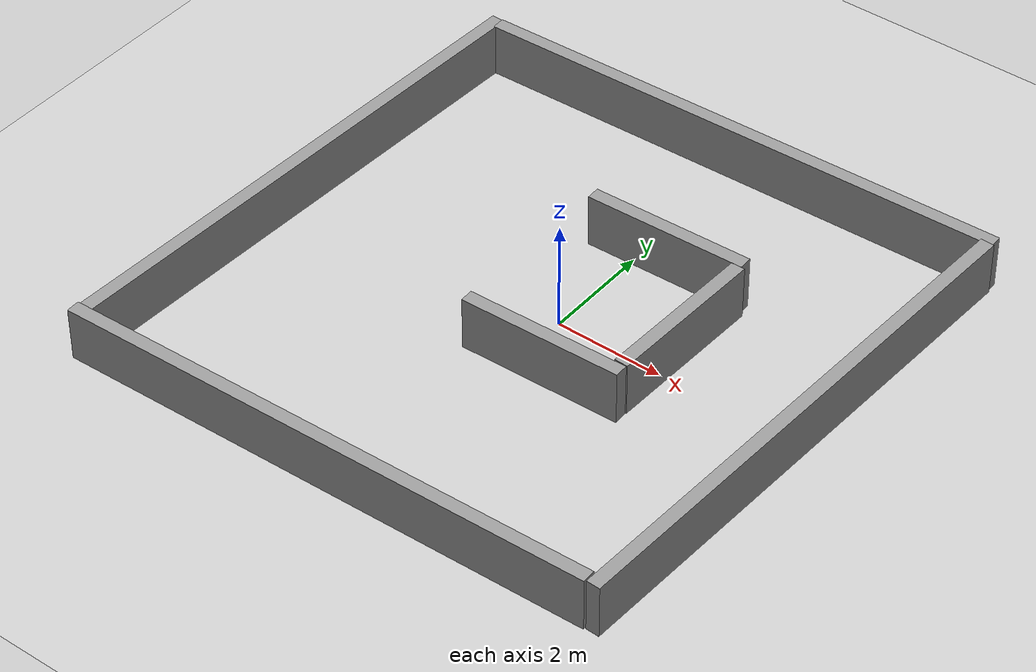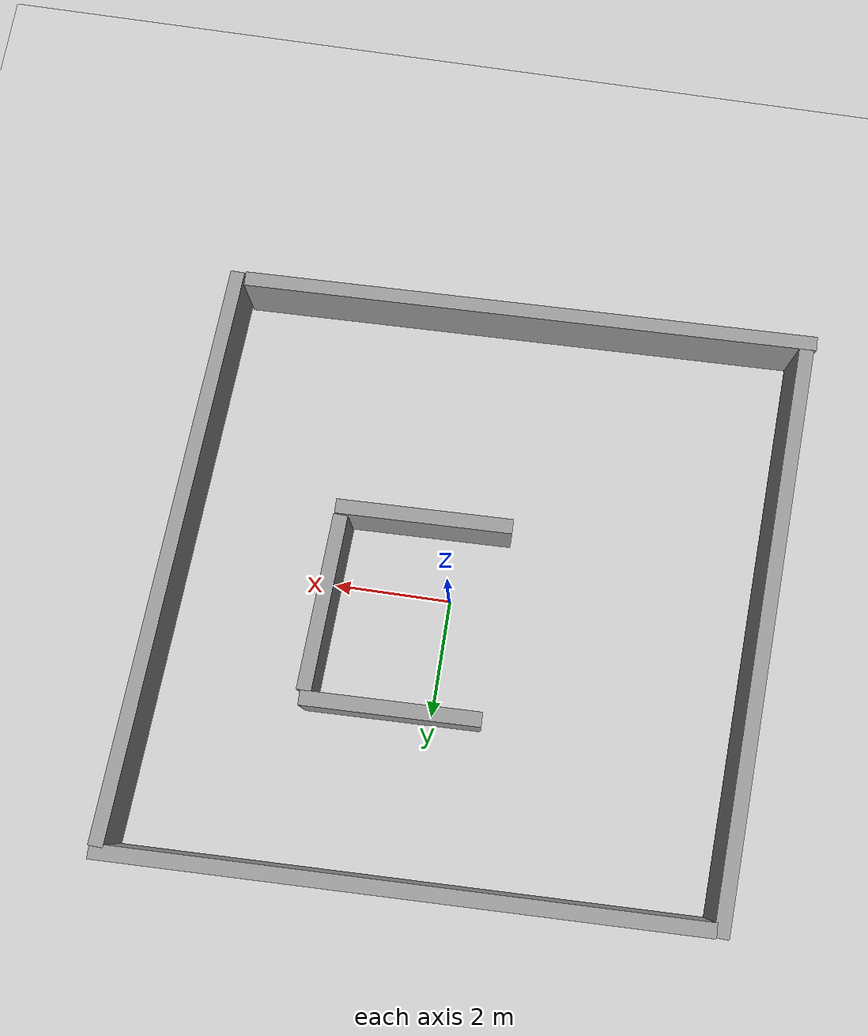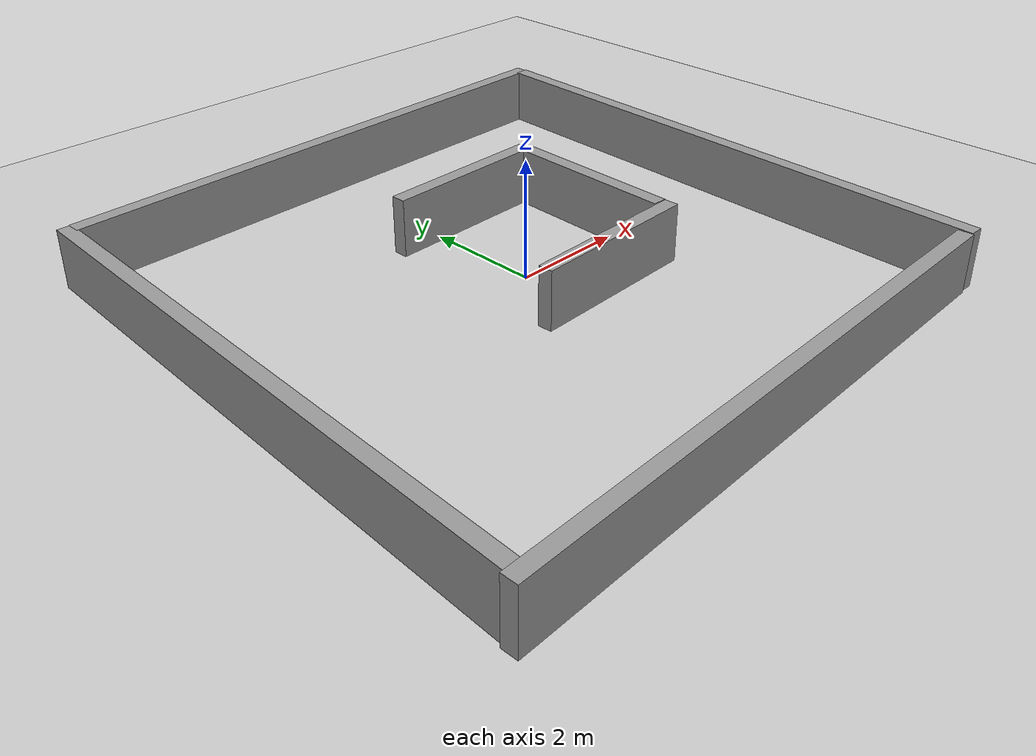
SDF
<sdf version="1.6">
 <world name="default">
  <light name="sun" type="directional">
   <pose>0 0 10 0 -0 0</pose>
   <diffuse>0.8 0.8 0.8 1</diffuse>
   <specular>0.1 0.1 0.1 1</specular>
   <attenuation>
    <range>1000</range>
    <constant>0.9</constant>
    <linear>0.01</linear>
    <quadratic>0.001</quadratic>
   </attenuation>
   <direction>-0.5 0.5 -1</direction>
  </light>
  <model name="ground_plane">
   <static>1</static>
   <link name="link">
    <collision name="collision">
     <geometry><plane><normal>0 0 1</normal><size>100 100</size></plane></geometry>
     <surface><friction><ode><mu>100</mu><mu2>50</mu2></ode></friction></surface>
    </collision>
    <visual name="visual">
     <cast_shadows>0</cast_shadows>
     <geometry><plane><normal>0 0 1</normal><size>100 100</size></plane></geometry>
     <material>
      <script><uri>file://media/materials/scripts/gazebo.material</uri><name>Gazebo/Grey</name></script>
     </material>
    </visual>
   </link>
  </model>
  <gravity>0 0 -9.8</gravity>
  <magnetic_field>6e-06 2.3e-05 -4.2e-05</magnetic_field>
  <atmosphere type="adiabatic"/>
  <physics name="default_physics" default="0" type="ode">
   <max_step_size>0.001</max_step_size>
   <real_time_factor>1</real_time_factor>
   <real_time_update_rate>1000</real_time_update_rate>
  </physics>
  <scene><ambient>0.4 0.4 0.4 1</ambient><background>0.7 0.7 0.7 1</background><shadows>1</shadows></scene>
  <spherical_coordinates>
   <surface_model>EARTH_WGS84</surface_model>
   <latitude_deg>0</latitude_deg>
   <longitude_deg>0</longitude_deg>
   <elevation>0</elevation>
   <heading_deg>0</heading_deg>
  </spherical_coordinates>
  <model name="wall">
   <link name="link">
    <inertial>
     <mass>1</mass>
     <inertia>
      <ixx>0.166667</ixx>
      <ixy>0</ixy>
      <ixz>0</ixz>
      <iyy>0.166667</iyy>
      <iyz>0</iyz>
      <izz>0.166667</izz>
     </inertia>
    </inertial>
    <visual name="visual">
     <geometry><box><size>0.25 10 1</size></box></geometry>
     <material>
      <script><name>Gazebo/Grey</name><uri>file://media/materials/scripts/gazebo.material</uri></script>
      <ambient>0.3 0.3 0.3 1</ambient>
      <diffuse>0.7 0.7 0.7 1</diffuse>
      <specular>0.01 0.01 0.01 1</specular>
      <emissive>0 0 0 1</emissive>
      <shader type="vertex"><normal_map>__default__</normal_map></shader>
     </material>
    </visual>
    <collision name="collision">
     <geometry><box><size>0.25 10 1</size></box></geometry>
     <surface>
      <friction>
       <ode><mu>1</mu><mu2>1</mu2><fdir1>0 0 0</fdir1><slip1>0</slip1><slip2>0</slip2></ode>
       <torsional>
        <coefficient>1</coefficient>
        <patch_radius>0</patch_radius>
        <surface_radius>0</surface_radius>
        <use_patch_radius>1</use_patch_radius>
        <ode><slip>0</slip></ode>
       </torsional>
      </friction>
      <bounce><restitution_coefficient>0</restitution_coefficient><threshold>1e+06</threshold></bounce>
      <contact>
       <collide_without_contact>0</collide_without_contact>
       <collide_without_contact_bitmask>1</collide_without_contact_bitmask>
       <collide_bitmask>1</collide_bitmask>
       <ode>
        <soft_cfm>0</soft_cfm>
        <soft_erp>0.2</soft_erp>
        <kp>1e+13</kp>
        <kd>1</kd>
        <max_vel>0.01</max_vel>
        <min_depth>0</min_depth>
       </ode>
       <bullet>
        <split_impulse>1</split_impulse>
        <split_impulse_penetration_threshold>-0.01</split_impulse_penetration_threshold>
        <soft_cfm>0</soft_cfm>
        <soft_erp>0.2</soft_erp>
        <kp>1e+13</kp>
        <kd>1</kd>
       </bullet>
      </contact>
     </surface>
    </collision>
   </link>
   <static>0</static>
   <pose>-0.631141 -5.12177 0.499259 0.000372 -1.3e-05 1.59814</pose>
  </model>
  <model name="wall_clone">
   <link name="link">
    <inertial>
     <mass>1</mass>
     <inertia>
      <ixx>0.166667</ixx>
      <ixy>0</ixy>
      <ixz>0</ixz>
      <iyy>0.166667</iyy>
      <iyz>0</iyz>
      <izz>0.166667</izz>
     </inertia>
    </inertial>
    <visual name="visual">
     <geometry><box><size>0.25 10 1</size></box></geometry>
     <material>
      <script><name>Gazebo/Grey</name><uri>file://media/materials/scripts/gazebo.material</uri></script>
      <ambient>0.3 0.3 0.3 1</ambient>
      <diffuse>0.7 0.7 0.7 1</diffuse>
      <specular>0.01 0.01 0.01 1</specular>
      <emissive>0 0 0 1</emissive>
      <shader type="vertex"><normal_map>__default__</normal_map></shader>
     </material>
    </visual>
    <collision name="collision">
     <geometry><box><size>0.25 10 1</size></box></geometry>
     <surface>
      <friction>
       <ode><mu>1</mu><mu2>1</mu2><fdir1>0 0 0</fdir1><slip1>0</slip1><slip2>0</slip2></ode>
       <torsional>
        <coefficient>1</coefficient>
        <patch_radius>0</patch_radius>
        <surface_radius>0</surface_radius>
        <use_patch_radius>1</use_patch_radius>
        <ode><slip>0</slip></ode>
       </torsional>
      </friction>
      <bounce><restitution_coefficient>0</restitution_coefficient><threshold>1e+06</threshold></bounce>
      <contact>
       <collide_without_contact>0</collide_without_contact>
       <collide_without_contact_bitmask>1</collide_without_contact_bitmask>
       <collide_bitmask>1</collide_bitmask>
       <ode>
        <soft_cfm>0</soft_cfm>
        <soft_erp>0.2</soft_erp>
        <kp>1e+13</kp>
        <kd>1</kd>
        <max_vel>0.01</max_vel>
        <min_depth>0</min_depth>
       </ode>
       <bullet>
        <split_impulse>1</split_impulse>
        <split_impulse_penetration_threshold>-0.01</split_impulse_penetration_threshold>
        <soft_cfm>0</soft_cfm>
        <soft_erp>0.2</soft_erp>
        <kp>1e+13</kp>
        <kd>1</kd>
       </bullet>
      </contact>
     </surface>
    </collision>
   </link>
   <static>0</static>
   <pose>0.014696 4.85163 0.499259 0.000372 -1.3e-05 1.59814</pose>
  </model>
  <model name="wall_clone_0">
   <link name="link">
    <inertial>
     <mass>1</mass>
     <inertia>
      <ixx>0.166667</ixx>
      <ixy>0</ixy>
      <ixz>0</ixz>
      <iyy>0.166667</iyy>
      <iyz>0</iyz>
      <izz>0.166667</izz>
     </inertia>
    </inertial>
    <visual name="visual">
     <geometry><box><size>0.25 10 1</size></box></geometry>
     <material>
      <script><name>Gazebo/Grey</name><uri>file://media/materials/scripts/gazebo.material</uri></script>
      <ambient>0.3 0.3 0.3 1</ambient>
      <diffuse>0.7 0.7 0.7 1</diffuse>
      <specular>0.01 0.01 0.01 1</specular>
      <emissive>0 0 0 1</emissive>
      <shader type="vertex"><normal_map>__default__</normal_map></shader>
     </material>
    </visual>
    <collision name="collision">
     <geometry><box><size>0.25 10 1</size></box></geometry>
     <surface>
      <friction>
       <ode><mu>1</mu><mu2>1</mu2><fdir1>0 0 0</fdir1><slip1>0</slip1><slip2>0</slip2></ode>
       <torsional>
        <coefficient>1</coefficient>
        <patch_radius>0</patch_radius>
        <surface_radius>0</surface_radius>
        <use_patch_radius>1</use_patch_radius>
        <ode><slip>0</slip></ode>
       </torsional>
      </friction>
      <bounce><restitution_coefficient>0</restitution_coefficient><threshold>1e+06</threshold></bounce>
      <contact>
       <collide_without_contact>0</collide_without_contact>
       <collide_without_contact_bitmask>1</collide_without_contact_bitmask>
       <collide_bitmask>1</collide_bitmask>
       <ode>
        <soft_cfm>0</soft_cfm>
        <soft_erp>0.2</soft_erp>
        <kp>1e+13</kp>
        <kd>1</kd>
        <max_vel>0.01</max_vel>
        <min_depth>0</min_depth>
       </ode>
       <bullet>
        <split_impulse>1</split_impulse>
        <split_impulse_penetration_threshold>-0.01</split_impulse_penetration_threshold>
        <soft_cfm>0</soft_cfm>
        <soft_erp>0.2</soft_erp>
        <kp>1e+13</kp>
        <kd>1</kd>
       </bullet>
      </contact>
     </surface>
    </collision>
   </link>
   <static>0</static>
   <pose>4.71384 -0.090223 0.499259 -1.2e-05 0.000372 -0.040212</pose>
  </model>
  <model name="mini_wall">
   <link name="link">
    <pose>0.081569 0.399888 0.000336 0 -0 0</pose>
    <inertial>
     <mass>1</mass>
     <inertia>
      <ixx>0.166667</ixx>
      <ixy>0</ixy>
      <ixz>0</ixz>
      <iyy>0.166667</iyy>
      <iyz>0</iyz>
      <izz>0.166667</izz>
     </inertia>
    </inertial>
    <visual name="visual">
     <geometry><box><size>0.25 3 1</size></box></geometry>
     <material>
      <script><name>Gazebo/Grey</name><uri>file://media/materials/scripts/gazebo.material</uri></script>
      <ambient>0.3 0.3 0.3 1</ambient>
      <diffuse>0.7 0.7 0.7 1</diffuse>
      <specular>0.01 0.01 0.01 1</specular>
      <emissive>0 0 0 1</emissive>
      <shader type="vertex"><normal_map>__default__</normal_map></shader>
     </material>
    </visual>
    <collision name="collision">
     <geometry><box><size>0.25 3 1</size></box></geometry>
     <surface>
      <friction>
       <ode><mu>1</mu><mu2>1</mu2><fdir1>0 0 0</fdir1><slip1>0</slip1><slip2>0</slip2></ode>
       <torsional>
        <coefficient>1</coefficient>
        <patch_radius>0</patch_radius>
        <surface_radius>0</surface_radius>
        <use_patch_radius>1</use_patch_radius>
        <ode><slip>0</slip></ode>
       </torsional>
      </friction>
      <bounce><restitution_coefficient>0</restitution_coefficient><threshold>1e+06</threshold></bounce>
      <contact>
       <collide_without_contact>0</collide_without_contact>
       <collide_without_contact_bitmask>1</collide_without_contact_bitmask>
       <collide_bitmask>1</collide_bitmask>
       <ode>
        <soft_cfm>0</soft_cfm>
        <soft_erp>0.2</soft_erp>
        <kp>1e+13</kp>
        <kd>1</kd>
        <max_vel>0.01</max_vel>
        <min_depth>0</min_depth>
       </ode>
       <bullet>
        <split_impulse>1</split_impulse>
        <split_impulse_penetration_threshold>-0.01</split_impulse_penetration_threshold>
        <soft_cfm>0</soft_cfm>
        <soft_erp>0.2</soft_erp>
        <kp>1e+13</kp>
        <kd>1</kd>
       </bullet>
      </contact>
     </surface>
    </collision>
   </link>
   <static>0</static>
   <pose>1.94077 0.070453 0.49789 -0.000847 -2.7e-05 -0.03231</pose>
  </model>
  <model name="mini_wall_clone">
   <link name="link">
    <pose>0.081569 0.399888 0.000336 0 -0 0</pose>
    <inertial>
     <mass>1</mass>
     <inertia>
      <ixx>0.166667</ixx>
      <ixy>0</ixy>
      <ixz>0</ixz>
      <iyy>0.166667</iyy>
      <iyz>0</iyz>
      <izz>0.166667</izz>
     </inertia>
    </inertial>
    <visual name="visual">
     <geometry><box><size>0.25 3 1</size></box></geometry>
     <material>
      <script><name>Gazebo/Grey</name><uri>file://media/materials/scripts/gazebo.material</uri></script>
      <ambient>0.3 0.3 0.3 1</ambient>
      <diffuse>0.7 0.7 0.7 1</diffuse>
      <specular>0.01 0.01 0.01 1</specular>
      <emissive>0 0 0 1</emissive>
      <shader type="vertex"><normal_map>__default__</normal_map></shader>
     </material>
    </visual>
    <collision name="collision">
     <geometry><box><size>0.25 3 1</size></box></geometry>
     <surface>
      <friction>
       <ode><mu>1</mu><mu2>1</mu2><fdir1>0 0 0</fdir1><slip1>0</slip1><slip2>0</slip2></ode>
       <torsional>
        <coefficient>1</coefficient>
        <patch_radius>0</patch_radius>
        <surface_radius>0</surface_radius>
        <use_patch_radius>1</use_patch_radius>
        <ode><slip>0</slip></ode>
       </torsional>
      </friction>
      <bounce><restitution_coefficient>0</restitution_coefficient><threshold>1e+06</threshold></bounce>
      <contact>
       <collide_without_contact>0</collide_without_contact>
       <collide_without_contact_bitmask>1</collide_without_contact_bitmask>
       <collide_bitmask>1</collide_bitmask>
       <ode>
        <soft_cfm>0</soft_cfm>
        <soft_erp>0.2</soft_erp>
        <kp>1e+13</kp>
        <kd>1</kd>
        <max_vel>0.01</max_vel>
        <min_depth>0</min_depth>
       </ode>
       <bullet>
        <split_impulse>1</split_impulse>
        <split_impulse_penetration_threshold>-0.01</split_impulse_penetration_threshold>
        <soft_cfm>0</soft_cfm>
        <soft_erp>0.2</soft_erp>
        <kp>1e+13</kp>
        <kd>1</kd>
       </bullet>
      </contact>
     </surface>
    </collision>
   </link>
   <static>0</static>
   <pose>0.200682 -1.14527 0.49789 -2.4e-05 -0.000847 -1.54245</pose>
  </model>
  <model name="mini_wall_clone_clone">
   <link name="link">
    <pose>0.081569 0.399888 0.000336 0 -0 0</pose>
    <inertial>
     <mass>1</mass>
     <inertia>
      <ixx>0.166667</ixx>
      <ixy>0</ixy>
      <ixz>0</ixz>
      <iyy>0.166667</iyy>
      <iyz>0</iyz>
      <izz>0.166667</izz>
     </inertia>
    </inertial>
    <visual name="visual">
     <geometry><box><size>0.25 3 1</size></box></geometry>
     <material>
      <script><name>Gazebo/Grey</name><uri>file://media/materials/scripts/gazebo.material</uri></script>
      <ambient>0.3 0.3 0.3 1</ambient>
      <diffuse>0.7 0.7 0.7 1</diffuse>
      <specular>0.01 0.01 0.01 1</specular>
      <emissive>0 0 0 1</emissive>
      <shader type="vertex"><normal_map>__default__</normal_map></shader>
     </material>
    </visual>
    <collision name="collision">
     <geometry><box><size>0.25 3 1</size></box></geometry>
     <surface>
      <friction>
       <ode><mu>1</mu><mu2>1</mu2><fdir1>0 0 0</fdir1><slip1>0</slip1><slip2>0</slip2></ode>
       <torsional>
        <coefficient>1</coefficient>
        <patch_radius>0</patch_radius>
        <surface_radius>0</surface_radius>
        <use_patch_radius>1</use_patch_radius>
        <ode><slip>0</slip></ode>
       </torsional>
      </friction>
      <bounce><restitution_coefficient>0</restitution_coefficient><threshold>1e+06</threshold></bounce>
      <contact>
       <collide_without_contact>0</collide_without_contact>
       <collide_without_contact_bitmask>1</collide_without_contact_bitmask>
       <collide_bitmask>1</collide_bitmask>
       <ode>
        <soft_cfm>0</soft_cfm>
        <soft_erp>0.2</soft_erp>
        <kp>1e+13</kp>
        <kd>1</kd>
        <max_vel>0.01</max_vel>
        <min_depth>0</min_depth>
       </ode>
       <bullet>
        <split_impulse>1</split_impulse>
        <split_impulse_penetration_threshold>-0.01</split_impulse_penetration_threshold>
        <soft_cfm>0</soft_cfm>
        <soft_erp>0.2</soft_erp>
        <kp>1e+13</kp>
        <kd>1</kd>
       </bullet>
      </contact>
     </surface>
    </collision>
   </link>
   <static>0</static>
   <pose>0.237574 2.1179 0.49789 -2.4e-05 -0.000847 -1.54245</pose>
  </model>
  <model name="wall_clone_0_clone">
   <link name="link">
    <inertial>
     <mass>1</mass>
     <inertia>
      <ixx>0.166667</ixx>
      <ixy>0</ixy>
      <ixz>0</ixz>
      <iyy>0.166667</iyy>
      <iyz>0</iyz>
      <izz>0.166667</izz>
     </inertia>
    </inertial>
    <visual name="visual">
     <geometry><box><size>0.25 10 1</size></box></geometry>
     <material>
      <script><name>Gazebo/Grey</name><uri>file://media/materials/scripts/gazebo.material</uri></script>
      <ambient>0.3 0.3 0.3 1</ambient>
      <diffuse>0.7 0.7 0.7 1</diffuse>
      <specular>0.01 0.01 0.01 1</specular>
      <emissive>0 0 0 1</emissive>
      <shader type="vertex"><normal_map>__default__</normal_map></shader>
     </material>
    </visual>
    <collision name="collision">
     <geometry><box><size>0.25 10 1</size></box></geometry>
     <surface>
      <friction>
       <ode><mu>1</mu><mu2>1</mu2><fdir1>0 0 0</fdir1><slip1>0</slip1><slip2>0</slip2></ode>
       <torsional>
        <coefficient>1</coefficient>
        <patch_radius>0</patch_radius>
        <surface_radius>0</surface_radius>
        <use_patch_radius>1</use_patch_radius>
        <ode><slip>0</slip></ode>
       </torsional>
      </friction>
      <bounce><restitution_coefficient>0</restitution_coefficient><threshold>1e+06</threshold></bounce>
      <contact>
       <collide_without_contact>0</collide_without_contact>
       <collide_without_contact_bitmask>1</collide_without_contact_bitmask>
       <collide_bitmask>1</collide_bitmask>
       <ode>
        <soft_cfm>0</soft_cfm>
        <soft_erp>0.2</soft_erp>
        <kp>1e+13</kp>
        <kd>1</kd>
        <max_vel>0.01</max_vel>
        <min_depth>0</min_depth>
       </ode>
       <bullet>
        <split_impulse>1</split_impulse>
        <split_impulse_penetration_threshold>-0.01</split_impulse_penetration_threshold>
        <soft_cfm>0</soft_cfm>
        <soft_erp>0.2</soft_erp>
        <kp>1e+13</kp>
        <kd>1</kd>
       </bullet>
      </contact>
     </surface>
    </collision>
   </link>
   <static>0</static>
   <pose>-5.26412 -0.171048 0.499259 -1.2e-05 0.000372 -0.040212</pose>
  </model>
 </world>
</sdf>
